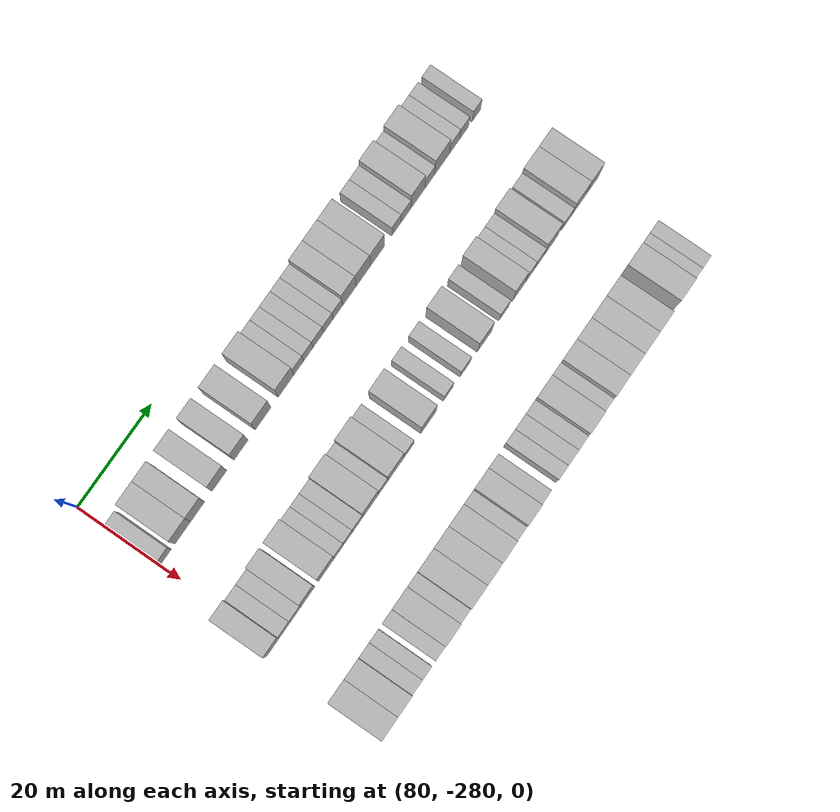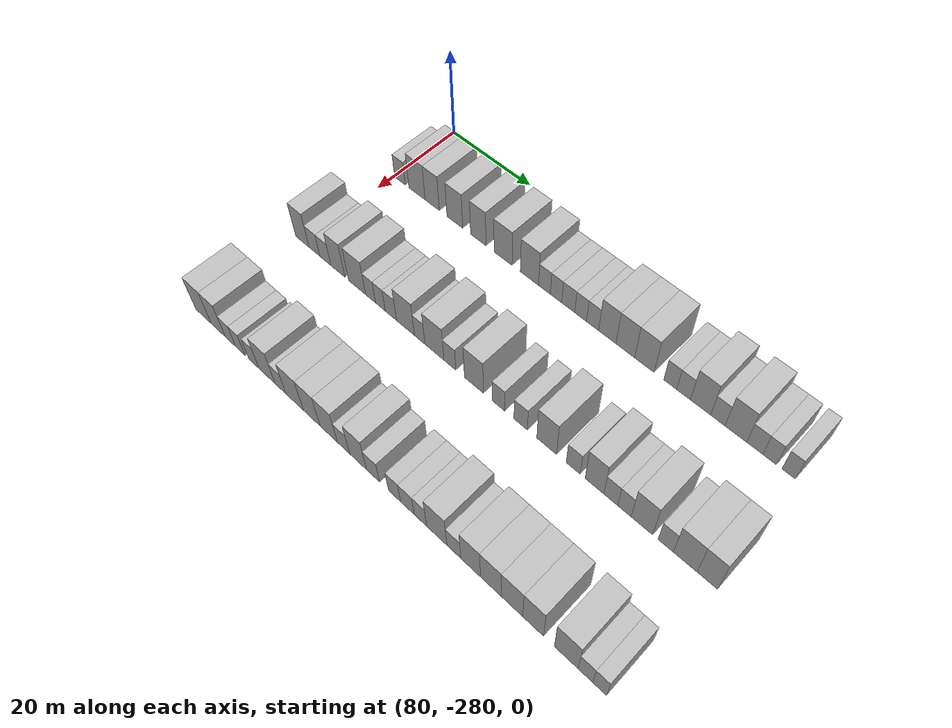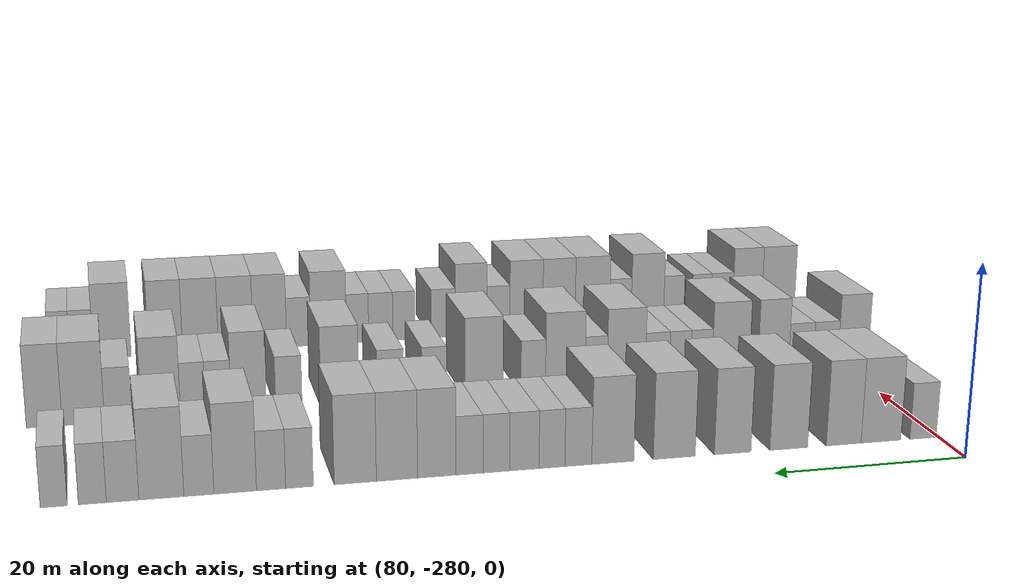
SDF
<sdf version="1.6">
 <world name="default">
  <model name="building_606">
   <static>1</static>
   <pose>91.0000 -278.3579 0 0.000000 0.000000 0.000000</pose>
   <link name="link">
    <pose>0 0 3.00 0 0 0</pose>
    <collision name="collision"><geometry><box><size>10.0000 2.8852 6.0000</size></box></geometry></collision>
    <visual name="visual">
     <cast_shadows>0</cast_shadows>
     <geometry><box><size>10.0000 2.8852 6.0000</size></box></geometry>
     <material>
      <script>
       <uri>model://HANNAS_wall/materials/scripts</uri>
       <uri>model://HANNAS_wall/materials/textures</uri>
       <name>vrc/HANNAS_wall</name>
      </script>
     </material>
    </visual>
   </link>
  </model>
  <model name="building_607">
   <static>1</static>
   <pose>91.0000 -273.7504 0 0.000000 0.000000 0.000000</pose>
   <link name="link">
    <pose>0 0 4.50 0 0 0</pose>
    <collision name="collision"><geometry><box><size>10.0000 4.3297 9.0000</size></box></geometry></collision>
    <visual name="visual">
     <cast_shadows>0</cast_shadows>
     <geometry><box><size>10.0000 4.3297 9.0000</size></box></geometry>
     <material>
      <script>
       <uri>model://HANNAS_wall/materials/scripts</uri>
       <uri>model://HANNAS_wall/materials/textures</uri>
       <name>vrc/HANNAS_wall</name>
      </script>
     </material>
    </visual>
   </link>
  </model>
  <model name="building_608">
   <static>1</static>
   <pose>91.0000 -269.7029 0 0.000000 0.000000 0.000000</pose>
   <link name="link">
    <pose>0 0 4.50 0 0 0</pose>
    <collision name="collision"><geometry><box><size>10.0000 3.7653 9.0000</size></box></geometry></collision>
    <visual name="visual">
     <cast_shadows>0</cast_shadows>
     <geometry><box><size>10.0000 3.7653 9.0000</size></box></geometry>
     <material>
      <script>
       <uri>model://HANNAS_wall/materials/scripts</uri>
       <uri>model://HANNAS_wall/materials/textures</uri>
       <name>vrc/HANNAS_wall</name>
      </script>
     </material>
    </visual>
   </link>
  </model>
  <model name="building_609">
   <static>1</static>
   <pose>91.0000 -263.8033 0 0.000000 0.000000 0.000000</pose>
   <link name="link">
    <pose>0 0 4.50 0 0 0</pose>
    <collision name="collision"><geometry><box><size>10.0000 4.0340 9.0000</size></box></geometry></collision>
    <visual name="visual">
     <cast_shadows>0</cast_shadows>
     <geometry><box><size>10.0000 4.0340 9.0000</size></box></geometry>
     <material>
      <script>
       <uri>model://HANNAS_wall/materials/scripts</uri>
       <uri>model://HANNAS_wall/materials/textures</uri>
       <name>vrc/HANNAS_wall</name>
      </script>
     </material>
    </visual>
   </link>
  </model>
  <model name="building_610">
   <static>1</static>
   <pose>91.0000 -257.8605 0 0.000000 0.000000 0.000000</pose>
   <link name="link">
    <pose>0 0 4.50 0 0 0</pose>
    <collision name="collision"><geometry><box><size>10.0000 3.8515 9.0000</size></box></geometry></collision>
    <visual name="visual">
     <cast_shadows>0</cast_shadows>
     <geometry><box><size>10.0000 3.8515 9.0000</size></box></geometry>
     <material>
      <script>
       <uri>model://HANNAS_wall/materials/scripts</uri>
       <uri>model://HANNAS_wall/materials/textures</uri>
       <name>vrc/HANNAS_wall</name>
      </script>
     </material>
    </visual>
   </link>
  </model>
  <model name="building_611">
   <static>1</static>
   <pose>91.0000 -251.7545 0 0.000000 0.000000 0.000000</pose>
   <link name="link">
    <pose>0 0 4.50 0 0 0</pose>
    <collision name="collision"><geometry><box><size>10.0000 4.3606 9.0000</size></box></geometry></collision>
    <visual name="visual">
     <cast_shadows>0</cast_shadows>
     <geometry><box><size>10.0000 4.3606 9.0000</size></box></geometry>
     <material>
      <script>
       <uri>model://HANNAS_wall/materials/scripts</uri>
       <uri>model://HANNAS_wall/materials/textures</uri>
       <name>vrc/HANNAS_wall</name>
      </script>
     </material>
    </visual>
   </link>
  </model>
  <model name="building_612">
   <static>1</static>
   <pose>91.0000 -245.4160 0 0.000000 0.000000 0.000000</pose>
   <link name="link">
    <pose>0 0 4.50 0 0 0</pose>
    <collision name="collision"><geometry><box><size>10.0000 4.3164 9.0000</size></box></geometry></collision>
    <visual name="visual">
     <cast_shadows>0</cast_shadows>
     <geometry><box><size>10.0000 4.3164 9.0000</size></box></geometry>
     <material>
      <script>
       <uri>model://HANNAS_wall/materials/scripts</uri>
       <uri>model://HANNAS_wall/materials/textures</uri>
       <name>vrc/HANNAS_wall</name>
      </script>
     </material>
    </visual>
   </link>
  </model>
  <model name="building_613">
   <static>1</static>
   <pose>91.0000 -241.8901 0 0.000000 0.000000 0.000000</pose>
   <link name="link">
    <pose>0 0 3.00 0 0 0</pose>
    <collision name="collision"><geometry><box><size>10.0000 2.7354 6.0000</size></box></geometry></collision>
    <visual name="visual">
     <cast_shadows>0</cast_shadows>
     <geometry><box><size>10.0000 2.7354 6.0000</size></box></geometry>
     <material>
      <script>
       <uri>model://HANNAS_wall/materials/scripts</uri>
       <uri>model://HANNAS_wall/materials/textures</uri>
       <name>vrc/HANNAS_wall</name>
      </script>
     </material>
    </visual>
   </link>
  </model>
  <model name="building_614">
   <static>1</static>
   <pose>91.0000 -239.2168 0 0.000000 0.000000 0.000000</pose>
   <link name="link">
    <pose>0 0 3.00 0 0 0</pose>
    <collision name="collision"><geometry><box><size>10.0000 2.6110 6.0000</size></box></geometry></collision>
    <visual name="visual">
     <cast_shadows>0</cast_shadows>
     <geometry><box><size>10.0000 2.6110 6.0000</size></box></geometry>
     <material>
      <script>
       <uri>model://HANNAS_wall/materials/scripts</uri>
       <uri>model://HANNAS_wall/materials/textures</uri>
       <name>vrc/HANNAS_wall</name>
      </script>
     </material>
    </visual>
   </link>
  </model>
  <model name="building_615">
   <static>1</static>
   <pose>91.0000 -236.4375 0 0.000000 0.000000 0.000000</pose>
   <link name="link">
    <pose>0 0 3.00 0 0 0</pose>
    <collision name="collision"><geometry><box><size>10.0000 2.9477 6.0000</size></box></geometry></collision>
    <visual name="visual">
     <cast_shadows>0</cast_shadows>
     <geometry><box><size>10.0000 2.9477 6.0000</size></box></geometry>
     <material>
      <script>
       <uri>model://HANNAS_wall/materials/scripts</uri>
       <uri>model://HANNAS_wall/materials/textures</uri>
       <name>vrc/HANNAS_wall</name>
      </script>
     </material>
    </visual>
   </link>
  </model>
  <model name="building_616">
   <static>1</static>
   <pose>91.0000 -233.6335 0 0.000000 0.000000 0.000000</pose>
   <link name="link">
    <pose>0 0 3.00 0 0 0</pose>
    <collision name="collision"><geometry><box><size>10.0000 2.6603 6.0000</size></box></geometry></collision>
    <visual name="visual">
     <cast_shadows>0</cast_shadows>
     <geometry><box><size>10.0000 2.6603 6.0000</size></box></geometry>
     <material>
      <script>
       <uri>model://HANNAS_wall/materials/scripts</uri>
       <uri>model://HANNAS_wall/materials/textures</uri>
       <name>vrc/HANNAS_wall</name>
      </script>
     </material>
    </visual>
   </link>
  </model>
  <model name="building_617">
   <static>1</static>
   <pose>91.0000 -230.9658 0 0.000000 0.000000 0.000000</pose>
   <link name="link">
    <pose>0 0 3.00 0 0 0</pose>
    <collision name="collision"><geometry><box><size>10.0000 2.6751 6.0000</size></box></geometry></collision>
    <visual name="visual">
     <cast_shadows>0</cast_shadows>
     <geometry><box><size>10.0000 2.6751 6.0000</size></box></geometry>
     <material>
      <script>
       <uri>model://HANNAS_wall/materials/scripts</uri>
       <uri>model://HANNAS_wall/materials/textures</uri>
       <name>vrc/HANNAS_wall</name>
      </script>
     </material>
    </visual>
   </link>
  </model>
  <model name="building_618">
   <static>1</static>
   <pose>91.0000 -227.7370 0 0.000000 0.000000 0.000000</pose>
   <link name="link">
    <pose>0 0 4.50 0 0 0</pose>
    <collision name="collision"><geometry><box><size>10.0000 3.7826 9.0000</size></box></geometry></collision>
    <visual name="visual">
     <cast_shadows>0</cast_shadows>
     <geometry><box><size>10.0000 3.7826 9.0000</size></box></geometry>
     <material>
      <script>
       <uri>model://HANNAS_wall/materials/scripts</uri>
       <uri>model://HANNAS_wall/materials/textures</uri>
       <name>vrc/HANNAS_wall</name>
      </script>
     </material>
    </visual>
   </link>
  </model>
  <model name="building_619">
   <static>1</static>
   <pose>91.0000 -223.8385 0 0.000000 0.000000 0.000000</pose>
   <link name="link">
    <pose>0 0 4.50 0 0 0</pose>
    <collision name="collision"><geometry><box><size>10.0000 4.0144 9.0000</size></box></geometry></collision>
    <visual name="visual">
     <cast_shadows>0</cast_shadows>
     <geometry><box><size>10.0000 4.0144 9.0000</size></box></geometry>
     <material>
      <script>
       <uri>model://HANNAS_wall/materials/scripts</uri>
       <uri>model://HANNAS_wall/materials/textures</uri>
       <name>vrc/HANNAS_wall</name>
      </script>
     </material>
    </visual>
   </link>
  </model>
  <model name="building_620">
   <static>1</static>
   <pose>91.0000 -219.7943 0 0.000000 0.000000 0.000000</pose>
   <link name="link">
    <pose>0 0 4.50 0 0 0</pose>
    <collision name="collision"><geometry><box><size>10.0000 4.0740 9.0000</size></box></geometry></collision>
    <visual name="visual">
     <cast_shadows>0</cast_shadows>
     <geometry><box><size>10.0000 4.0740 9.0000</size></box></geometry>
     <material>
      <script>
       <uri>model://HANNAS_wall/materials/scripts</uri>
       <uri>model://HANNAS_wall/materials/textures</uri>
       <name>vrc/HANNAS_wall</name>
      </script>
     </material>
    </visual>
   </link>
  </model>
  <model name="building_621">
   <static>1</static>
   <pose>91.0000 -214.4376 0 0.000000 0.000000 0.000000</pose>
   <link name="link">
    <pose>0 0 3.00 0 0 0</pose>
    <collision name="collision"><geometry><box><size>10.0000 2.6394 6.0000</size></box></geometry></collision>
    <visual name="visual">
     <cast_shadows>0</cast_shadows>
     <geometry><box><size>10.0000 2.6394 6.0000</size></box></geometry>
     <material>
      <script>
       <uri>model://HANNAS_wall/materials/scripts</uri>
       <uri>model://HANNAS_wall/materials/textures</uri>
       <name>vrc/HANNAS_wall</name>
      </script>
     </material>
    </visual>
   </link>
  </model>
  <model name="building_622">
   <static>1</static>
   <pose>91.0000 -211.7363 0 0.000000 0.000000 0.000000</pose>
   <link name="link">
    <pose>0 0 3.00 0 0 0</pose>
    <collision name="collision"><geometry><box><size>10.0000 2.7633 6.0000</size></box></geometry></collision>
    <visual name="visual">
     <cast_shadows>0</cast_shadows>
     <geometry><box><size>10.0000 2.7633 6.0000</size></box></geometry>
     <material>
      <script>
       <uri>model://HANNAS_wall/materials/scripts</uri>
       <uri>model://HANNAS_wall/materials/textures</uri>
       <name>vrc/HANNAS_wall</name>
      </script>
     </material>
    </visual>
   </link>
  </model>
  <model name="building_623">
   <static>1</static>
   <pose>91.0000 -208.3496 0 0.000000 0.000000 0.000000</pose>
   <link name="link">
    <pose>0 0 4.50 0 0 0</pose>
    <collision name="collision"><geometry><box><size>10.0000 4.0100 9.0000</size></box></geometry></collision>
    <visual name="visual">
     <cast_shadows>0</cast_shadows>
     <geometry><box><size>10.0000 4.0100 9.0000</size></box></geometry>
     <material>
      <script>
       <uri>model://HANNAS_wall/materials/scripts</uri>
       <uri>model://HANNAS_wall/materials/textures</uri>
       <name>vrc/HANNAS_wall</name>
      </script>
     </material>
    </visual>
   </link>
  </model>
  <model name="building_624">
   <static>1</static>
   <pose>91.0000 -204.9414 0 0.000000 0.000000 0.000000</pose>
   <link name="link">
    <pose>0 0 3.00 0 0 0</pose>
    <collision name="collision"><geometry><box><size>10.0000 2.8065 6.0000</size></box></geometry></collision>
    <visual name="visual">
     <cast_shadows>0</cast_shadows>
     <geometry><box><size>10.0000 2.8065 6.0000</size></box></geometry>
     <material>
      <script>
       <uri>model://HANNAS_wall/materials/scripts</uri>
       <uri>model://HANNAS_wall/materials/textures</uri>
       <name>vrc/HANNAS_wall</name>
      </script>
     </material>
    </visual>
   </link>
  </model>
  <model name="building_625">
   <static>1</static>
   <pose>91.0000 -201.4519 0 0.000000 0.000000 0.000000</pose>
   <link name="link">
    <pose>0 0 4.50 0 0 0</pose>
    <collision name="collision"><geometry><box><size>10.0000 4.1724 9.0000</size></box></geometry></collision>
    <visual name="visual">
     <cast_shadows>0</cast_shadows>
     <geometry><box><size>10.0000 4.1724 9.0000</size></box></geometry>
     <material>
      <script>
       <uri>model://HANNAS_wall/materials/scripts</uri>
       <uri>model://HANNAS_wall/materials/textures</uri>
       <name>vrc/HANNAS_wall</name>
      </script>
     </material>
    </visual>
   </link>
  </model>
  <model name="building_626">
   <static>1</static>
   <pose>91.0000 -197.8753 0 0.000000 0.000000 0.000000</pose>
   <link name="link">
    <pose>0 0 3.00 0 0 0</pose>
    <collision name="collision"><geometry><box><size>10.0000 2.9808 6.0000</size></box></geometry></collision>
    <visual name="visual">
     <cast_shadows>0</cast_shadows>
     <geometry><box><size>10.0000 2.9808 6.0000</size></box></geometry>
     <material>
      <script>
       <uri>model://HANNAS_wall/materials/scripts</uri>
       <uri>model://HANNAS_wall/materials/textures</uri>
       <name>vrc/HANNAS_wall</name>
      </script>
     </material>
    </visual>
   </link>
  </model>
  <model name="building_627">
   <static>1</static>
   <pose>91.0000 -195.1075 0 0.000000 0.000000 0.000000</pose>
   <link name="link">
    <pose>0 0 3.00 0 0 0</pose>
    <collision name="collision"><geometry><box><size>10.0000 2.5547 6.0000</size></box></geometry></collision>
    <visual name="visual">
     <cast_shadows>0</cast_shadows>
     <geometry><box><size>10.0000 2.5547 6.0000</size></box></geometry>
     <material>
      <script>
       <uri>model://HANNAS_wall/materials/scripts</uri>
       <uri>model://HANNAS_wall/materials/textures</uri>
       <name>vrc/HANNAS_wall</name>
      </script>
     </material>
    </visual>
   </link>
  </model>
  <model name="building_628">
   <static>1</static>
   <pose>91.0000 -191.6015 0 0.000000 0.000000 0.000000</pose>
   <link name="link">
    <pose>0 0 3.00 0 0 0</pose>
    <collision name="collision"><geometry><box><size>10.0000 2.4574 6.0000</size></box></geometry></collision>
    <visual name="visual">
     <cast_shadows>0</cast_shadows>
     <geometry><box><size>10.0000 2.4574 6.0000</size></box></geometry>
     <material>
      <script>
       <uri>model://HANNAS_wall/materials/scripts</uri>
       <uri>model://HANNAS_wall/materials/textures</uri>
       <name>vrc/HANNAS_wall</name>
      </script>
     </material>
    </visual>
   </link>
  </model>
  <model name="building_795">
   <static>1</static>
   <pose>113.0000 -280.2847 0 0.000000 0.000000 0.000000</pose>
   <link name="link">
    <pose>0 0 4.50 0 0 0</pose>
    <collision name="collision"><geometry><box><size>10.0000 3.6719 9.0000</size></box></geometry></collision>
    <visual name="visual">
     <cast_shadows>0</cast_shadows>
     <geometry><box><size>10.0000 3.6719 9.0000</size></box></geometry>
     <material>
      <script>
       <uri>model://HANNAS_wall/materials/scripts</uri>
       <uri>model://HANNAS_wall/materials/textures</uri>
       <name>vrc/HANNAS_wall</name>
      </script>
     </material>
    </visual>
   </link>
  </model>
  <model name="building_796">
   <static>1</static>
   <pose>113.0000 -276.9693 0 0.000000 0.000000 0.000000</pose>
   <link name="link">
    <pose>0 0 3.00 0 0 0</pose>
    <collision name="collision"><geometry><box><size>10.0000 2.9590 6.0000</size></box></geometry></collision>
    <visual name="visual">
     <cast_shadows>0</cast_shadows>
     <geometry><box><size>10.0000 2.9590 6.0000</size></box></geometry>
     <material>
      <script>
       <uri>model://HANNAS_wall/materials/scripts</uri>
       <uri>model://HANNAS_wall/materials/textures</uri>
       <name>vrc/HANNAS_wall</name>
      </script>
     </material>
    </visual>
   </link>
  </model>
  <model name="building_797">
   <static>1</static>
   <pose>113.0000 -274.0029 0 0.000000 0.000000 0.000000</pose>
   <link name="link">
    <pose>0 0 3.00 0 0 0</pose>
    <collision name="collision"><geometry><box><size>10.0000 2.9737 6.0000</size></box></geometry></collision>
    <visual name="visual">
     <cast_shadows>0</cast_shadows>
     <geometry><box><size>10.0000 2.9737 6.0000</size></box></geometry>
     <material>
      <script>
       <uri>model://HANNAS_wall/materials/scripts</uri>
       <uri>model://HANNAS_wall/materials/textures</uri>
       <name>vrc/HANNAS_wall</name>
      </script>
     </material>
    </visual>
   </link>
  </model>
  <model name="building_798">
   <static>1</static>
   <pose>113.0000 -270.6734 0 0.000000 0.000000 0.000000</pose>
   <link name="link">
    <pose>0 0 4.50 0 0 0</pose>
    <collision name="collision"><geometry><box><size>10.0000 3.6854 9.0000</size></box></geometry></collision>
    <visual name="visual">
     <cast_shadows>0</cast_shadows>
     <geometry><box><size>10.0000 3.6854 9.0000</size></box></geometry>
     <material>
      <script>
       <uri>model://HANNAS_wall/materials/scripts</uri>
       <uri>model://HANNAS_wall/materials/textures</uri>
       <name>vrc/HANNAS_wall</name>
      </script>
     </material>
    </visual>
   </link>
  </model>
  <model name="building_799">
   <static>1</static>
   <pose>113.0000 -265.6287 0 0.000000 0.000000 0.000000</pose>
   <link name="link">
    <pose>0 0 4.50 0 0 0</pose>
    <collision name="collision"><geometry><box><size>10.0000 4.4040 9.0000</size></box></geometry></collision>
    <visual name="visual">
     <cast_shadows>0</cast_shadows>
     <geometry><box><size>10.0000 4.4040 9.0000</size></box></geometry>
     <material>
      <script>
       <uri>model://HANNAS_wall/materials/scripts</uri>
       <uri>model://HANNAS_wall/materials/textures</uri>
       <name>vrc/HANNAS_wall</name>
      </script>
     </material>
    </visual>
   </link>
  </model>
  <model name="building_800">
   <static>1</static>
   <pose>113.0000 -262.1621 0 0.000000 0.000000 0.000000</pose>
   <link name="link">
    <pose>0 0 3.00 0 0 0</pose>
    <collision name="collision"><geometry><box><size>10.0000 2.5293 6.0000</size></box></geometry></collision>
    <visual name="visual">
     <cast_shadows>0</cast_shadows>
     <geometry><box><size>10.0000 2.5293 6.0000</size></box></geometry>
     <material>
      <script>
       <uri>model://HANNAS_wall/materials/scripts</uri>
       <uri>model://HANNAS_wall/materials/textures</uri>
       <name>vrc/HANNAS_wall</name>
      </script>
     </material>
    </visual>
   </link>
  </model>
  <model name="building_801">
   <static>1</static>
   <pose>113.0000 -259.6637 0 0.000000 0.000000 0.000000</pose>
   <link name="link">
    <pose>0 0 3.00 0 0 0</pose>
    <collision name="collision"><geometry><box><size>10.0000 2.4675 6.0000</size></box></geometry></collision>
    <visual name="visual">
     <cast_shadows>0</cast_shadows>
     <geometry><box><size>10.0000 2.4675 6.0000</size></box></geometry>
     <material>
      <script>
       <uri>model://HANNAS_wall/materials/scripts</uri>
       <uri>model://HANNAS_wall/materials/textures</uri>
       <name>vrc/HANNAS_wall</name>
      </script>
     </material>
    </visual>
   </link>
  </model>
  <model name="building_802">
   <static>1</static>
   <pose>113.0000 -257.0267 0 0.000000 0.000000 0.000000</pose>
   <link name="link">
    <pose>0 0 3.00 0 0 0</pose>
    <collision name="collision"><geometry><box><size>10.0000 2.8065 6.0000</size></box></geometry></collision>
    <visual name="visual">
     <cast_shadows>0</cast_shadows>
     <geometry><box><size>10.0000 2.8065 6.0000</size></box></geometry>
     <material>
      <script>
       <uri>model://HANNAS_wall/materials/scripts</uri>
       <uri>model://HANNAS_wall/materials/textures</uri>
       <name>vrc/HANNAS_wall</name>
      </script>
     </material>
    </visual>
   </link>
  </model>
  <model name="building_803">
   <static>1</static>
   <pose>113.0000 -253.4268 0 0.000000 0.000000 0.000000</pose>
   <link name="link">
    <pose>0 0 4.50 0 0 0</pose>
    <collision name="collision"><geometry><box><size>10.0000 4.3933 9.0000</size></box></geometry></collision>
    <visual name="visual">
     <cast_shadows>0</cast_shadows>
     <geometry><box><size>10.0000 4.3933 9.0000</size></box></geometry>
     <material>
      <script>
       <uri>model://HANNAS_wall/materials/scripts</uri>
       <uri>model://HANNAS_wall/materials/textures</uri>
       <name>vrc/HANNAS_wall</name>
      </script>
     </material>
    </visual>
   </link>
  </model>
  <model name="building_804">
   <static>1</static>
   <pose>113.0000 -249.9687 0 0.000000 0.000000 0.000000</pose>
   <link name="link">
    <pose>0 0 3.00 0 0 0</pose>
    <collision name="collision"><geometry><box><size>10.0000 2.5228 6.0000</size></box></geometry></collision>
    <visual name="visual">
     <cast_shadows>0</cast_shadows>
     <geometry><box><size>10.0000 2.5228 6.0000</size></box></geometry>
     <material>
      <script>
       <uri>model://HANNAS_wall/materials/scripts</uri>
       <uri>model://HANNAS_wall/materials/textures</uri>
       <name>vrc/HANNAS_wall</name>
      </script>
     </material>
    </visual>
   </link>
  </model>
  <model name="building_805">
   <static>1</static>
   <pose>113.0000 -246.4713 0 0.000000 0.000000 0.000000</pose>
   <link name="link">
    <pose>0 0 4.50 0 0 0</pose>
    <collision name="collision"><geometry><box><size>10.0000 4.4719 9.0000</size></box></geometry></collision>
    <visual name="visual">
     <cast_shadows>0</cast_shadows>
     <geometry><box><size>10.0000 4.4719 9.0000</size></box></geometry>
     <material>
      <script>
       <uri>model://HANNAS_wall/materials/scripts</uri>
       <uri>model://HANNAS_wall/materials/textures</uri>
       <name>vrc/HANNAS_wall</name>
      </script>
     </material>
    </visual>
   </link>
  </model>
  <model name="building_806">
   <static>1</static>
   <pose>113.0000 -242.8446 0 0.000000 0.000000 0.000000</pose>
   <link name="link">
    <pose>0 0 3.00 0 0 0</pose>
    <collision name="collision"><geometry><box><size>10.0000 2.7816 6.0000</size></box></geometry></collision>
    <visual name="visual">
     <cast_shadows>0</cast_shadows>
     <geometry><box><size>10.0000 2.7816 6.0000</size></box></geometry>
     <material>
      <script>
       <uri>model://HANNAS_wall/materials/scripts</uri>
       <uri>model://HANNAS_wall/materials/textures</uri>
       <name>vrc/HANNAS_wall</name>
      </script>
     </material>
    </visual>
   </link>
  </model>
  <model name="building_807">
   <static>1</static>
   <pose>113.0000 -237.3087 0 0.000000 0.000000 0.000000</pose>
   <link name="link">
    <pose>0 0 4.50 0 0 0</pose>
    <collision name="collision"><geometry><box><size>10.0000 4.2901 9.0000</size></box></geometry></collision>
    <visual name="visual">
     <cast_shadows>0</cast_shadows>
     <geometry><box><size>10.0000 4.2901 9.0000</size></box></geometry>
     <material>
      <script>
       <uri>model://HANNAS_wall/materials/scripts</uri>
       <uri>model://HANNAS_wall/materials/textures</uri>
       <name>vrc/HANNAS_wall</name>
      </script>
     </material>
    </visual>
   </link>
  </model>
  <model name="building_808">
   <static>1</static>
   <pose>113.0000 -231.8027 0 0.000000 0.000000 0.000000</pose>
   <link name="link">
    <pose>0 0 3.00 0 0 0</pose>
    <collision name="collision"><geometry><box><size>10.0000 2.7218 6.0000</size></box></geometry></collision>
    <visual name="visual">
     <cast_shadows>0</cast_shadows>
     <geometry><box><size>10.0000 2.7218 6.0000</size></box></geometry>
     <material>
      <script>
       <uri>model://HANNAS_wall/materials/scripts</uri>
       <uri>model://HANNAS_wall/materials/textures</uri>
       <name>vrc/HANNAS_wall</name>
      </script>
     </material>
    </visual>
   </link>
  </model>
  <model name="building_809">
   <static>1</static>
   <pose>113.0000 -226.9958 0 0.000000 0.000000 0.000000</pose>
   <link name="link">
    <pose>0 0 3.00 0 0 0</pose>
    <collision name="collision"><geometry><box><size>10.0000 2.8921 6.0000</size></box></geometry></collision>
    <visual name="visual">
     <cast_shadows>0</cast_shadows>
     <geometry><box><size>10.0000 2.8921 6.0000</size></box></geometry>
     <material>
      <script>
       <uri>model://HANNAS_wall/materials/scripts</uri>
       <uri>model://HANNAS_wall/materials/textures</uri>
       <name>vrc/HANNAS_wall</name>
      </script>
     </material>
    </visual>
   </link>
  </model>
  <model name="building_810">
   <static>1</static>
   <pose>113.0000 -221.4871 0 0.000000 0.000000 0.000000</pose>
   <link name="link">
    <pose>0 0 4.50 0 0 0</pose>
    <collision name="collision"><geometry><box><size>10.0000 4.1253 9.0000</size></box></geometry></collision>
    <visual name="visual">
     <cast_shadows>0</cast_shadows>
     <geometry><box><size>10.0000 4.1253 9.0000</size></box></geometry>
     <material>
      <script>
       <uri>model://HANNAS_wall/materials/scripts</uri>
       <uri>model://HANNAS_wall/materials/textures</uri>
       <name>vrc/HANNAS_wall</name>
      </script>
     </material>
    </visual>
   </link>
  </model>
  <model name="building_811">
   <static>1</static>
   <pose>113.0000 -216.0083 0 0.000000 0.000000 0.000000</pose>
   <link name="link">
    <pose>0 0 3.00 0 0 0</pose>
    <collision name="collision"><geometry><box><size>10.0000 2.8323 6.0000</size></box></geometry></collision>
    <visual name="visual">
     <cast_shadows>0</cast_shadows>
     <geometry><box><size>10.0000 2.8323 6.0000</size></box></geometry>
     <material>
      <script>
       <uri>model://HANNAS_wall/materials/scripts</uri>
       <uri>model://HANNAS_wall/materials/textures</uri>
       <name>vrc/HANNAS_wall</name>
      </script>
     </material>
    </visual>
   </link>
  </model>
  <model name="building_812">
   <static>1</static>
   <pose>113.0000 -211.7317 0 0.000000 0.000000 0.000000</pose>
   <link name="link">
    <pose>0 0 4.50 0 0 0</pose>
    <collision name="collision"><geometry><box><size>10.0000 3.7208 9.0000</size></box></geometry></collision>
    <visual name="visual">
     <cast_shadows>0</cast_shadows>
     <geometry><box><size>10.0000 3.7208 9.0000</size></box></geometry>
     <material>
      <script>
       <uri>model://HANNAS_wall/materials/scripts</uri>
       <uri>model://HANNAS_wall/materials/textures</uri>
       <name>vrc/HANNAS_wall</name>
      </script>
     </material>
    </visual>
   </link>
  </model>
  <model name="building_813">
   <static>1</static>
   <pose>113.0000 -208.5177 0 0.000000 0.000000 0.000000</pose>
   <link name="link">
    <pose>0 0 3.00 0 0 0</pose>
    <collision name="collision"><geometry><box><size>10.0000 2.7072 6.0000</size></box></geometry></collision>
    <visual name="visual">
     <cast_shadows>0</cast_shadows>
     <geometry><box><size>10.0000 2.7072 6.0000</size></box></geometry>
     <material>
      <script>
       <uri>model://HANNAS_wall/materials/scripts</uri>
       <uri>model://HANNAS_wall/materials/textures</uri>
       <name>vrc/HANNAS_wall</name>
      </script>
     </material>
    </visual>
   </link>
  </model>
  <model name="building_814">
   <static>1</static>
   <pose>113.0000 -205.8577 0 0.000000 0.000000 0.000000</pose>
   <link name="link">
    <pose>0 0 3.00 0 0 0</pose>
    <collision name="collision"><geometry><box><size>10.0000 2.6129 6.0000</size></box></geometry></collision>
    <visual name="visual">
     <cast_shadows>0</cast_shadows>
     <geometry><box><size>10.0000 2.6129 6.0000</size></box></geometry>
     <material>
      <script>
       <uri>model://HANNAS_wall/materials/scripts</uri>
       <uri>model://HANNAS_wall/materials/textures</uri>
       <name>vrc/HANNAS_wall</name>
      </script>
     </material>
    </visual>
   </link>
  </model>
  <model name="building_815">
   <static>1</static>
   <pose>113.0000 -202.5131 0 0.000000 0.000000 0.000000</pose>
   <link name="link">
    <pose>0 0 4.50 0 0 0</pose>
    <collision name="collision"><geometry><box><size>10.0000 4.0762 9.0000</size></box></geometry></collision>
    <visual name="visual">
     <cast_shadows>0</cast_shadows>
     <geometry><box><size>10.0000 4.0762 9.0000</size></box></geometry>
     <material>
      <script>
       <uri>model://HANNAS_wall/materials/scripts</uri>
       <uri>model://HANNAS_wall/materials/textures</uri>
       <name>vrc/HANNAS_wall</name>
      </script>
     </material>
    </visual>
   </link>
  </model>
  <model name="building_816">
   <static>1</static>
   <pose>113.0000 -198.0705 0 0.000000 0.000000 0.000000</pose>
   <link name="link">
    <pose>0 0 3.00 0 0 0</pose>
    <collision name="collision"><geometry><box><size>10.0000 2.8090 6.0000</size></box></geometry></collision>
    <visual name="visual">
     <cast_shadows>0</cast_shadows>
     <geometry><box><size>10.0000 2.8090 6.0000</size></box></geometry>
     <material>
      <script>
       <uri>model://HANNAS_wall/materials/scripts</uri>
       <uri>model://HANNAS_wall/materials/textures</uri>
       <name>vrc/HANNAS_wall</name>
      </script>
     </material>
    </visual>
   </link>
  </model>
  <model name="building_817">
   <static>1</static>
   <pose>113.0000 -194.5020 0 0.000000 0.000000 0.000000</pose>
   <link name="link">
    <pose>0 0 4.50 0 0 0</pose>
    <collision name="collision"><geometry><box><size>10.0000 4.3281 9.0000</size></box></geometry></collision>
    <visual name="visual">
     <cast_shadows>0</cast_shadows>
     <geometry><box><size>10.0000 4.3281 9.0000</size></box></geometry>
     <material>
      <script>
       <uri>model://HANNAS_wall/materials/scripts</uri>
       <uri>model://HANNAS_wall/materials/textures</uri>
       <name>vrc/HANNAS_wall</name>
      </script>
     </material>
    </visual>
   </link>
  </model>
  <model name="building_818">
   <static>1</static>
   <pose>113.0000 -190.5178 0 0.000000 0.000000 0.000000</pose>
   <link name="link">
    <pose>0 0 4.50 0 0 0</pose>
    <collision name="collision"><geometry><box><size>10.0000 3.6403 9.0000</size></box></geometry></collision>
    <visual name="visual">
     <cast_shadows>0</cast_shadows>
     <geometry><box><size>10.0000 3.6403 9.0000</size></box></geometry>
     <material>
      <script>
       <uri>model://HANNAS_wall/materials/scripts</uri>
       <uri>model://HANNAS_wall/materials/textures</uri>
       <name>vrc/HANNAS_wall</name>
      </script>
     </material>
    </visual>
   </link>
  </model>
  <model name="building_984">
   <static>1</static>
   <pose>135.0000 -279.8964 0 0.000000 0.000000 0.000000</pose>
   <link name="link">
    <pose>0 0 4.50 0 0 0</pose>
    <collision name="collision"><geometry><box><size>10.0000 4.3582 9.0000</size></box></geometry></collision>
    <visual name="visual">
     <cast_shadows>0</cast_shadows>
     <geometry><box><size>10.0000 4.3582 9.0000</size></box></geometry>
     <material>
      <script>
       <uri>model://HANNAS_wall/materials/scripts</uri>
       <uri>model://HANNAS_wall/materials/textures</uri>
       <name>vrc/HANNAS_wall</name>
      </script>
     </material>
    </visual>
   </link>
  </model>
  <model name="building_985">
   <static>1</static>
   <pose>135.0000 -275.8015 0 0.000000 0.000000 0.000000</pose>
   <link name="link">
    <pose>0 0 4.50 0 0 0</pose>
    <collision name="collision"><geometry><box><size>10.0000 3.8318 9.0000</size></box></geometry></collision>
    <visual name="visual">
     <cast_shadows>0</cast_shadows>
     <geometry><box><size>10.0000 3.8318 9.0000</size></box></geometry>
     <material>
      <script>
       <uri>model://HANNAS_wall/materials/scripts</uri>
       <uri>model://HANNAS_wall/materials/textures</uri>
       <name>vrc/HANNAS_wall</name>
      </script>
     </material>
    </visual>
   </link>
  </model>
  <model name="building_986">
   <static>1</static>
   <pose>135.0000 -272.4850 0 0.000000 0.000000 0.000000</pose>
   <link name="link">
    <pose>0 0 3.00 0 0 0</pose>
    <collision name="collision"><geometry><box><size>10.0000 2.8011 6.0000</size></box></geometry></collision>
    <visual name="visual">
     <cast_shadows>0</cast_shadows>
     <geometry><box><size>10.0000 2.8011 6.0000</size></box></geometry>
     <material>
      <script>
       <uri>model://HANNAS_wall/materials/scripts</uri>
       <uri>model://HANNAS_wall/materials/textures</uri>
       <name>vrc/HANNAS_wall</name>
      </script>
     </material>
    </visual>
   </link>
  </model>
  <model name="building_987">
   <static>1</static>
   <pose>135.0000 -269.8278 0 0.000000 0.000000 0.000000</pose>
   <link name="link">
    <pose>0 0 3.00 0 0 0</pose>
    <collision name="collision"><geometry><box><size>10.0000 2.5133 6.0000</size></box></geometry></collision>
    <visual name="visual">
     <cast_shadows>0</cast_shadows>
     <geometry><box><size>10.0000 2.5133 6.0000</size></box></geometry>
     <material>
      <script>
       <uri>model://HANNAS_wall/materials/scripts</uri>
       <uri>model://HANNAS_wall/materials/textures</uri>
       <name>vrc/HANNAS_wall</name>
      </script>
     </material>
    </visual>
   </link>
  </model>
  <model name="building_988">
   <static>1</static>
   <pose>135.0000 -266.2497 0 0.000000 0.000000 0.000000</pose>
   <link name="link">
    <pose>0 0 3.00 0 0 0</pose>
    <collision name="collision"><geometry><box><size>10.0000 2.6429 6.0000</size></box></geometry></collision>
    <visual name="visual">
     <cast_shadows>0</cast_shadows>
     <geometry><box><size>10.0000 2.6429 6.0000</size></box></geometry>
     <material>
      <script>
       <uri>model://HANNAS_wall/materials/scripts</uri>
       <uri>model://HANNAS_wall/materials/textures</uri>
       <name>vrc/HANNAS_wall</name>
      </script>
     </material>
    </visual>
   </link>
  </model>
  <model name="building_989">
   <static>1</static>
   <pose>135.0000 -262.8429 0 0.000000 0.000000 0.000000</pose>
   <link name="link">
    <pose>0 0 4.50 0 0 0</pose>
    <collision name="collision"><geometry><box><size>10.0000 4.1706 9.0000</size></box></geometry></collision>
    <visual name="visual">
     <cast_shadows>0</cast_shadows>
     <geometry><box><size>10.0000 4.1706 9.0000</size></box></geometry>
     <material>
      <script>
       <uri>model://HANNAS_wall/materials/scripts</uri>
       <uri>model://HANNAS_wall/materials/textures</uri>
       <name>vrc/HANNAS_wall</name>
      </script>
     </material>
    </visual>
   </link>
  </model>
  <model name="building_990">
   <static>1</static>
   <pose>135.0000 -259.3806 0 0.000000 0.000000 0.000000</pose>
   <link name="link">
    <pose>0 0 3.00 0 0 0</pose>
    <collision name="collision"><geometry><box><size>10.0000 2.7541 6.0000</size></box></geometry></collision>
    <visual name="visual">
     <cast_shadows>0</cast_shadows>
     <geometry><box><size>10.0000 2.7541 6.0000</size></box></geometry>
     <material>
      <script>
       <uri>model://HANNAS_wall/materials/scripts</uri>
       <uri>model://HANNAS_wall/materials/textures</uri>
       <name>vrc/HANNAS_wall</name>
      </script>
     </material>
    </visual>
   </link>
  </model>
  <model name="building_991">
   <static>1</static>
   <pose>135.0000 -255.8140 0 0.000000 0.000000 0.000000</pose>
   <link name="link">
    <pose>0 0 4.50 0 0 0</pose>
    <collision name="collision"><geometry><box><size>10.0000 4.3790 9.0000</size></box></geometry></collision>
    <visual name="visual">
     <cast_shadows>0</cast_shadows>
     <geometry><box><size>10.0000 4.3790 9.0000</size></box></geometry>
     <material>
      <script>
       <uri>model://HANNAS_wall/materials/scripts</uri>
       <uri>model://HANNAS_wall/materials/textures</uri>
       <name>vrc/HANNAS_wall</name>
      </script>
     </material>
    </visual>
   </link>
  </model>
  <model name="building_992">
   <static>1</static>
   <pose>135.0000 -251.5876 0 0.000000 0.000000 0.000000</pose>
   <link name="link">
    <pose>0 0 4.50 0 0 0</pose>
    <collision name="collision"><geometry><box><size>10.0000 4.0738 9.0000</size></box></geometry></collision>
    <visual name="visual">
     <cast_shadows>0</cast_shadows>
     <geometry><box><size>10.0000 4.0738 9.0000</size></box></geometry>
     <material>
      <script>
       <uri>model://HANNAS_wall/materials/scripts</uri>
       <uri>model://HANNAS_wall/materials/textures</uri>
       <name>vrc/HANNAS_wall</name>
      </script>
     </material>
    </visual>
   </link>
  </model>
  <model name="building_993">
   <static>1</static>
   <pose>135.0000 -247.4904 0 0.000000 0.000000 0.000000</pose>
   <link name="link">
    <pose>0 0 4.50 0 0 0</pose>
    <collision name="collision"><geometry><box><size>10.0000 4.1206 9.0000</size></box></geometry></collision>
    <visual name="visual">
     <cast_shadows>0</cast_shadows>
     <geometry><box><size>10.0000 4.1206 9.0000</size></box></geometry>
     <material>
      <script>
       <uri>model://HANNAS_wall/materials/scripts</uri>
       <uri>model://HANNAS_wall/materials/textures</uri>
       <name>vrc/HANNAS_wall</name>
      </script>
     </material>
    </visual>
   </link>
  </model>
  <model name="building_994">
   <static>1</static>
   <pose>135.0000 -244.0041 0 0.000000 0.000000 0.000000</pose>
   <link name="link">
    <pose>0 0 3.00 0 0 0</pose>
    <collision name="collision"><geometry><box><size>10.0000 2.8521 6.0000</size></box></geometry></collision>
    <visual name="visual">
     <cast_shadows>0</cast_shadows>
     <geometry><box><size>10.0000 2.8521 6.0000</size></box></geometry>
     <material>
      <script>
       <uri>model://HANNAS_wall/materials/scripts</uri>
       <uri>model://HANNAS_wall/materials/textures</uri>
       <name>vrc/HANNAS_wall</name>
      </script>
     </material>
    </visual>
   </link>
  </model>
  <model name="building_995">
   <static>1</static>
   <pose>135.0000 -240.6393 0 0.000000 0.000000 0.000000</pose>
   <link name="link">
    <pose>0 0 4.50 0 0 0</pose>
    <collision name="collision"><geometry><box><size>10.0000 3.8774 9.0000</size></box></geometry></collision>
    <visual name="visual">
     <cast_shadows>0</cast_shadows>
     <geometry><box><size>10.0000 3.8774 9.0000</size></box></geometry>
     <material>
      <script>
       <uri>model://HANNAS_wall/materials/scripts</uri>
       <uri>model://HANNAS_wall/materials/textures</uri>
       <name>vrc/HANNAS_wall</name>
      </script>
     </material>
    </visual>
   </link>
  </model>
  <model name="building_996">
   <static>1</static>
   <pose>135.0000 -237.2168 0 0.000000 0.000000 0.000000</pose>
   <link name="link">
    <pose>0 0 3.00 0 0 0</pose>
    <collision name="collision"><geometry><box><size>10.0000 2.9675 6.0000</size></box></geometry></collision>
    <visual name="visual">
     <cast_shadows>0</cast_shadows>
     <geometry><box><size>10.0000 2.9675 6.0000</size></box></geometry>
     <material>
      <script>
       <uri>model://HANNAS_wall/materials/scripts</uri>
       <uri>model://HANNAS_wall/materials/textures</uri>
       <name>vrc/HANNAS_wall</name>
      </script>
     </material>
    </visual>
   </link>
  </model>
  <model name="building_997">
   <static>1</static>
   <pose>135.0000 -232.3923 0 0.000000 0.000000 0.000000</pose>
   <link name="link">
    <pose>0 0 3.00 0 0 0</pose>
    <collision name="collision"><geometry><box><size>10.0000 2.6815 6.0000</size></box></geometry></collision>
    <visual name="visual">
     <cast_shadows>0</cast_shadows>
     <geometry><box><size>10.0000 2.6815 6.0000</size></box></geometry>
     <material>
      <script>
       <uri>model://HANNAS_wall/materials/scripts</uri>
       <uri>model://HANNAS_wall/materials/textures</uri>
       <name>vrc/HANNAS_wall</name>
      </script>
     </material>
    </visual>
   </link>
  </model>
  <model name="building_998">
   <static>1</static>
   <pose>135.0000 -229.5859 0 0.000000 0.000000 0.000000</pose>
   <link name="link">
    <pose>0 0 3.00 0 0 0</pose>
    <collision name="collision"><geometry><box><size>10.0000 2.9314 6.0000</size></box></geometry></collision>
    <visual name="visual">
     <cast_shadows>0</cast_shadows>
     <geometry><box><size>10.0000 2.9314 6.0000</size></box></geometry>
     <material>
      <script>
       <uri>model://HANNAS_wall/materials/scripts</uri>
       <uri>model://HANNAS_wall/materials/textures</uri>
       <name>vrc/HANNAS_wall</name>
      </script>
     </material>
    </visual>
   </link>
  </model>
  <model name="building_999">
   <static>1</static>
   <pose>135.0000 -226.7796 0 0.000000 0.000000 0.000000</pose>
   <link name="link">
    <pose>0 0 3.00 0 0 0</pose>
    <collision name="collision"><geometry><box><size>10.0000 2.6813 6.0000</size></box></geometry></collision>
    <visual name="visual">
     <cast_shadows>0</cast_shadows>
     <geometry><box><size>10.0000 2.6813 6.0000</size></box></geometry>
     <material>
      <script>
       <uri>model://HANNAS_wall/materials/scripts</uri>
       <uri>model://HANNAS_wall/materials/textures</uri>
       <name>vrc/HANNAS_wall</name>
      </script>
     </material>
    </visual>
   </link>
  </model>
  <model name="building_1000">
   <static>1</static>
   <pose>135.0000 -223.3077 0 0.000000 0.000000 0.000000</pose>
   <link name="link">
    <pose>0 0 4.50 0 0 0</pose>
    <collision name="collision"><geometry><box><size>10.0000 4.2625 9.0000</size></box></geometry></collision>
    <visual name="visual">
     <cast_shadows>0</cast_shadows>
     <geometry><box><size>10.0000 4.2625 9.0000</size></box></geometry>
     <material>
      <script>
       <uri>model://HANNAS_wall/materials/scripts</uri>
       <uri>model://HANNAS_wall/materials/textures</uri>
       <name>vrc/HANNAS_wall</name>
      </script>
     </material>
    </visual>
   </link>
  </model>
  <model name="building_1001">
   <static>1</static>
   <pose>135.0000 -219.7408 0 0.000000 0.000000 0.000000</pose>
   <link name="link">
    <pose>0 0 3.00 0 0 0</pose>
    <collision name="collision"><geometry><box><size>10.0000 2.8712 6.0000</size></box></geometry></collision>
    <visual name="visual">
     <cast_shadows>0</cast_shadows>
     <geometry><box><size>10.0000 2.8712 6.0000</size></box></geometry>
     <material>
      <script>
       <uri>model://HANNAS_wall/materials/scripts</uri>
       <uri>model://HANNAS_wall/materials/textures</uri>
       <name>vrc/HANNAS_wall</name>
      </script>
     </material>
    </visual>
   </link>
  </model>
  <model name="building_1002">
   <static>1</static>
   <pose>135.0000 -216.3254 0 0.000000 0.000000 0.000000</pose>
   <link name="link">
    <pose>0 0 4.50 0 0 0</pose>
    <collision name="collision"><geometry><box><size>10.0000 3.9597 9.0000</size></box></geometry></collision>
    <visual name="visual">
     <cast_shadows>0</cast_shadows>
     <geometry><box><size>10.0000 3.9597 9.0000</size></box></geometry>
     <material>
      <script>
       <uri>model://HANNAS_wall/materials/scripts</uri>
       <uri>model://HANNAS_wall/materials/textures</uri>
       <name>vrc/HANNAS_wall</name>
      </script>
     </material>
    </visual>
   </link>
  </model>
  <model name="building_1003">
   <static>1</static>
   <pose>135.0000 -212.3032 0 0.000000 0.000000 0.000000</pose>
   <link name="link">
    <pose>0 0 4.50 0 0 0</pose>
    <collision name="collision"><geometry><box><size>10.0000 4.0847 9.0000</size></box></geometry></collision>
    <visual name="visual">
     <cast_shadows>0</cast_shadows>
     <geometry><box><size>10.0000 4.0847 9.0000</size></box></geometry>
     <material>
      <script>
       <uri>model://HANNAS_wall/materials/scripts</uri>
       <uri>model://HANNAS_wall/materials/textures</uri>
       <name>vrc/HANNAS_wall</name>
      </script>
     </material>
    </visual>
   </link>
  </model>
  <model name="building_1004">
   <static>1</static>
   <pose>135.0000 -208.1732 0 0.000000 0.000000 0.000000</pose>
   <link name="link">
    <pose>0 0 4.50 0 0 0</pose>
    <collision name="collision"><geometry><box><size>10.0000 4.1753 9.0000</size></box></geometry></collision>
    <visual name="visual">
     <cast_shadows>0</cast_shadows>
     <geometry><box><size>10.0000 4.1753 9.0000</size></box></geometry>
     <material>
      <script>
       <uri>model://HANNAS_wall/materials/scripts</uri>
       <uri>model://HANNAS_wall/materials/textures</uri>
       <name>vrc/HANNAS_wall</name>
      </script>
     </material>
    </visual>
   </link>
  </model>
  <model name="building_1005">
   <static>1</static>
   <pose>135.0000 -204.1224 0 0.000000 0.000000 0.000000</pose>
   <link name="link">
    <pose>0 0 4.50 0 0 0</pose>
    <collision name="collision"><geometry><box><size>10.0000 3.9263 9.0000</size></box></geometry></collision>
    <visual name="visual">
     <cast_shadows>0</cast_shadows>
     <geometry><box><size>10.0000 3.9263 9.0000</size></box></geometry>
     <material>
      <script>
       <uri>model://HANNAS_wall/materials/scripts</uri>
       <uri>model://HANNAS_wall/materials/textures</uri>
       <name>vrc/HANNAS_wall</name>
      </script>
     </material>
    </visual>
   </link>
  </model>
  <model name="building_1006">
   <static>1</static>
   <pose>135.0000 -197.9965 0 0.000000 0.000000 0.000000</pose>
   <link name="link">
    <pose>0 0 4.50 0 0 0</pose>
    <collision name="collision"><geometry><box><size>10.0000 4.3254 9.0000</size></box></geometry></collision>
    <visual name="visual">
     <cast_shadows>0</cast_shadows>
     <geometry><box><size>10.0000 4.3254 9.0000</size></box></geometry>
     <material>
      <script>
       <uri>model://HANNAS_wall/materials/scripts</uri>
       <uri>model://HANNAS_wall/materials/textures</uri>
       <name>vrc/HANNAS_wall</name>
      </script>
     </material>
    </visual>
   </link>
  </model>
  <model name="building_1007">
   <static>1</static>
   <pose>135.0000 -194.5123 0 0.000000 0.000000 0.000000</pose>
   <link name="link">
    <pose>0 0 3.00 0 0 0</pose>
    <collision name="collision"><geometry><box><size>10.0000 2.6429 6.0000</size></box></geometry></collision>
    <visual name="visual">
     <cast_shadows>0</cast_shadows>
     <geometry><box><size>10.0000 2.6429 6.0000</size></box></geometry>
     <material>
      <script>
       <uri>model://HANNAS_wall/materials/scripts</uri>
       <uri>model://HANNAS_wall/materials/textures</uri>
       <name>vrc/HANNAS_wall</name>
      </script>
     </material>
    </visual>
   </link>
  </model>
  <model name="building_1008">
   <static>1</static>
   <pose>135.0000 -191.9792 0 0.000000 0.000000 0.000000</pose>
   <link name="link">
    <pose>0 0 3.00 0 0 0</pose>
    <collision name="collision"><geometry><box><size>10.0000 2.4232 6.0000</size></box></geometry></collision>
    <visual name="visual">
     <cast_shadows>0</cast_shadows>
     <geometry><box><size>10.0000 2.4232 6.0000</size></box></geometry>
     <material>
      <script>
       <uri>model://HANNAS_wall/materials/scripts</uri>
       <uri>model://HANNAS_wall/materials/textures</uri>
       <name>vrc/HANNAS_wall</name>
      </script>
     </material>
    </visual>
   </link>
  </model>
 </world>
</sdf>
